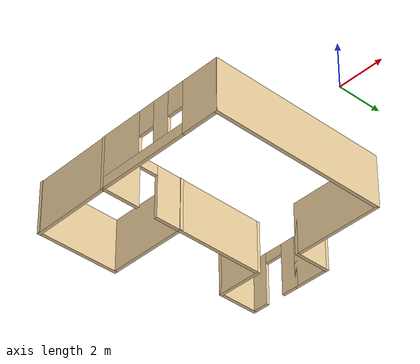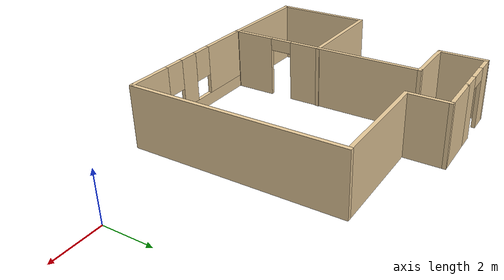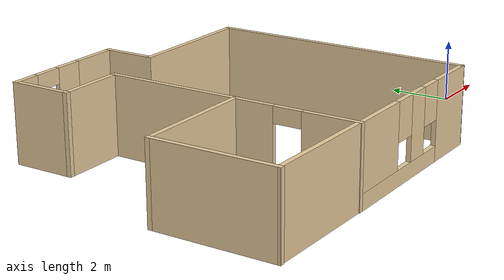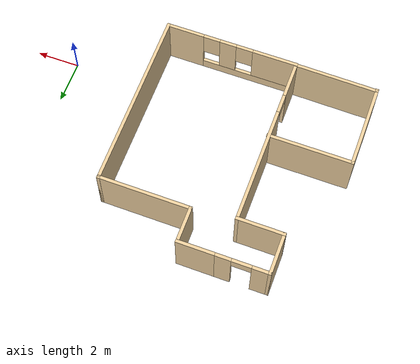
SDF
<?xml version='1.0'?>
<sdf version='1.6'>
  <model name='building2'>
    <pose frame=''>-7.03582 2.78165 0 0 -0 0</pose>
    <link name='Wall_10'>
      <pose frame=''>-3.13529 -0.925 0 0 -0 1.5708</pose>
      <visual name='Wall_10_Visual_0'>
        <pose frame=''>-3.222 0 1.25 0 -0 0</pose>
        <geometry>
          <box>
            <size>1.80599 0.15 2.5</size>
          </box>
        </geometry>
        <material>
          <script>
            <uri>file://media/materials/scripts/gazebo.material</uri>
            <name>Gazebo/Grey</name>
          </script>
          <ambient>0.921569 0.807843 0.615686 1</ambient>
        </material>
        <meta>
          <layer>0</layer>
        </meta>
      </visual>
      <collision name='Wall_10_Collision_0'>
        <geometry>
          <box>
            <size>1.80599 0.15 2.5</size>
          </box>
        </geometry>
        <pose frame=''>-3.222 0 1.25 0 -0 0</pose>
      </collision>
      <visual name='Wall_10_Visual_1'>
        <pose frame=''>1.353 0 1.25 0 -0 0</pose>
        <geometry>
          <box>
            <size>5.54401 0.15 2.5</size>
          </box>
        </geometry>
        <material>
          <script>
            <uri>file://media/materials/scripts/gazebo.material</uri>
            <name>Gazebo/Grey</name>
          </script>
          <ambient>0.921569 0.807843 0.615686 1</ambient>
        </material>
        <meta>
          <layer>0</layer>
        </meta>
      </visual>
      <collision name='Wall_10_Collision_1'>
        <geometry>
          <box>
            <size>5.54401 0.15 2.5</size>
          </box>
        </geometry>
        <pose frame=''>1.353 0 1.25 0 -0 0</pose>
      </collision>
      <visual name='Wall_10_Visual_2'>
        <pose frame=''>-1.86901 0 2.25 0 -0 0</pose>
        <geometry>
          <box>
            <size>0.9 0.15 0.5</size>
          </box>
        </geometry>
        <material>
          <script>
            <uri>file://media/materials/scripts/gazebo.material</uri>
            <name>Gazebo/Grey</name>
          </script>
          <ambient>0.921569 0.807843 0.615686 1</ambient>
        </material>
        <meta>
          <layer>0</layer>
        </meta>
      </visual>
      <collision name='Wall_10_Collision_2'>
        <geometry>
          <box>
            <size>0.9 0.15 0.5</size>
          </box>
        </geometry>
        <pose frame=''>-1.86901 0 2.25 0 -0 0</pose>
      </collision>
    </link>
    <link name='Wall_11'>
      <collision name='Wall_11_Collision'>
        <geometry>
          <box>
            <size>2.25 0.15 2.5</size>
          </box>
        </geometry>
        <pose frame=''>0 0 1.25 0 -0 0</pose>
      </collision>
      <visual name='Wall_11_Visual'>
        <pose frame=''>0 0 1.25 0 -0 0</pose>
        <geometry>
          <box>
            <size>2.25 0.15 2.5</size>
          </box>
        </geometry>
        <material>
          <script>
            <uri>file://media/materials/scripts/gazebo.material</uri>
            <name>Gazebo/Grey</name>
          </script>
          <ambient>0.921569 0.807843 0.615686 1</ambient>
        </material>
        <meta>
          <layer>0</layer>
        </meta>
      </visual>
      <pose frame=''>-4.18529 3.125 0 0 -0 3.14159</pose>
    </link>
    <link name='Wall_12'>
      <collision name='Wall_12_Collision'>
        <geometry>
          <box>
            <size>2 0.15 2.5</size>
          </box>
        </geometry>
        <pose frame=''>0 0 1.25 0 -0 0</pose>
      </collision>
      <visual name='Wall_12_Visual'>
        <pose frame=''>0 0 1.25 0 -0 0</pose>
        <geometry>
          <box>
            <size>2 0.15 2.5</size>
          </box>
        </geometry>
        <material>
          <script>
            <uri>file://media/materials/scripts/gazebo.material</uri>
            <name>Gazebo/Grey</name>
          </script>
          <ambient>0.921569 0.807843 0.615686 1</ambient>
        </material>
        <meta>
          <layer>0</layer>
        </meta>
      </visual>
      <pose frame=''>-5.23528 4.05 0 0 -0 1.5708</pose>
    </link>
    <link name='Wall_13'>
      <pose frame=''>-3.98528 4.975 0 0 -0 0</pose>
      <visual name='Wall_13_Visual_0'>
        <pose frame=''>-0.889332 0 1.25 0 -0 0</pose>
        <geometry>
          <box>
            <size>0.871337 0.15 2.5</size>
          </box>
        </geometry>
        <material>
          <script>
            <uri>file://media/materials/scripts/gazebo.material</uri>
            <name>Gazebo/Grey</name>
          </script>
          <ambient>0.921569 0.807843 0.615686 1</ambient>
        </material>
        <meta>
          <layer>0</layer>
        </meta>
      </visual>
      <collision name='Wall_13_Collision_0'>
        <geometry>
          <box>
            <size>0.871337 0.15 2.5</size>
          </box>
        </geometry>
        <pose frame=''>-0.889332 0 1.25 0 -0 0</pose>
      </collision>
      <visual name='Wall_13_Visual_1'>
        <pose frame=''>0.885668 0 1.25 0 -0 0</pose>
        <geometry>
          <box>
            <size>0.878663 0.15 2.5</size>
          </box>
        </geometry>
        <material>
          <script>
            <uri>file://media/materials/scripts/gazebo.material</uri>
            <name>Gazebo/Grey</name>
          </script>
          <ambient>0.921569 0.807843 0.615686 1</ambient>
        </material>
        <meta>
          <layer>0</layer>
        </meta>
      </visual>
      <collision name='Wall_13_Collision_1'>
        <geometry>
          <box>
            <size>0.878663 0.15 2.5</size>
          </box>
        </geometry>
        <pose frame=''>0.885668 0 1.25 0 -0 0</pose>
      </collision>
      <visual name='Wall_13_Visual_2'>
        <pose frame=''>-0.003663 0 2.25 0 -0 0</pose>
        <geometry>
          <box>
            <size>0.9 0.15 0.5</size>
          </box>
        </geometry>
        <material>
          <script>
            <uri>file://media/materials/scripts/gazebo.material</uri>
            <name>Gazebo/Grey</name>
          </script>
          <ambient>0.921569 0.807843 0.615686 1</ambient>
        </material>
        <meta>
          <layer>0</layer>
        </meta>
      </visual>
      <collision name='Wall_13_Collision_2'>
        <geometry>
          <box>
            <size>0.9 0.15 0.5</size>
          </box>
        </geometry>
        <pose frame=''>-0.003663 0 2.25 0 -0 0</pose>
      </collision>
    </link>
    <link name='Wall_15'>
      <collision name='Wall_15_Collision'>
        <geometry>
          <box>
            <size>4 0.15 2.5</size>
          </box>
        </geometry>
        <pose frame=''>0 0 1.25 0 -0 0</pose>
      </collision>
      <visual name='Wall_15_Visual'>
        <pose frame=''>0 0 1.25 0 -0 0</pose>
        <geometry>
          <box>
            <size>4 0.15 2.5</size>
          </box>
        </geometry>
        <material>
          <script>
            <uri>file://media/materials/scripts/gazebo.material</uri>
            <name>Gazebo/Grey</name>
          </script>
          <ambient>0.921569 0.807843 0.615686 1</ambient>
        </material>
        <meta>
          <layer>0</layer>
        </meta>
      </visual>
      <pose frame=''>-5.03498 -1.08234 0 0 -0 3.14159</pose>
    </link>
    <link name='Wall_16'>
      <collision name='Wall_16_Collision'>
        <geometry>
          <box>
            <size>4 0.15 2.5</size>
          </box>
        </geometry>
        <pose frame=''>0 0 1.25 0 -0 0</pose>
      </collision>
      <visual name='Wall_16_Visual'>
        <pose frame=''>0 0 1.25 0 -0 0</pose>
        <geometry>
          <box>
            <size>4 0.15 2.5</size>
          </box>
        </geometry>
        <material>
          <script>
            <uri>file://media/materials/scripts/gazebo.material</uri>
            <name>Gazebo/Grey</name>
          </script>
          <ambient>0.921569 0.807843 0.615686 1</ambient>
        </material>
        <meta>
          <layer>0</layer>
        </meta>
      </visual>
      <pose frame=''>-6.95998 -3.00734 0 0 -0 -1.5708</pose>
    </link>
    <link name='Wall_17'>
      <collision name='Wall_17_Collision'>
        <geometry>
          <box>
            <size>3.97494 0.15 2.5</size>
          </box>
        </geometry>
        <pose frame=''>0 0 1.25 0 -0 0</pose>
      </collision>
      <visual name='Wall_17_Visual'>
        <pose frame=''>0 0 1.25 0 -0 0</pose>
        <geometry>
          <box>
            <size>3.97494 0.15 2.5</size>
          </box>
        </geometry>
        <material>
          <script>
            <uri>file://media/materials/scripts/gazebo.material</uri>
            <name>Gazebo/Grey</name>
          </script>
          <ambient>0.921569 0.807843 0.615686 1</ambient>
        </material>
        <meta>
          <layer>0</layer>
        </meta>
      </visual>
      <pose frame=''>-5.04763 -4.93054 0 0 -0 -0.011153</pose>
    </link>
    <link name='Wall_5'>
      <collision name='Wall_5_Collision'>
        <geometry>
          <box>
            <size>1.75 0.15 2.5</size>
          </box>
        </geometry>
        <pose frame=''>0 0 1.25 0 -0 0</pose>
      </collision>
      <visual name='Wall_5_Visual'>
        <pose frame=''>0 0 1.25 0 -0 0</pose>
        <geometry>
          <box>
            <size>1.75 0.15 2.5</size>
          </box>
        </geometry>
        <material>
          <script>
            <uri>file://media/materials/scripts/gazebo.material</uri>
            <name>Gazebo/Grey</name>
          </script>
          <ambient>0.921569 0.807843 0.615686 1</ambient>
        </material>
        <meta>
          <layer>0</layer>
        </meta>
      </visual>
      <pose frame=''>-1.93528 4.975 0 0 -0 0</pose>
    </link>
    <link name='Wall_6'>
      <collision name='Wall_6_Collision'>
        <geometry>
          <box>
            <size>1.75 0.15 2.5</size>
          </box>
        </geometry>
        <pose frame=''>0 0 1.25 0 -0 0</pose>
      </collision>
      <visual name='Wall_6_Visual'>
        <pose frame=''>0 0 1.25 0 -0 0</pose>
        <geometry>
          <box>
            <size>1.75 0.15 2.5</size>
          </box>
        </geometry>
        <material>
          <script>
            <uri>file://media/materials/scripts/gazebo.material</uri>
            <name>Gazebo/Grey</name>
          </script>
          <ambient>0.921569 0.807843 0.615686 1</ambient>
        </material>
        <meta>
          <layer>0</layer>
        </meta>
      </visual>
      <pose frame=''>-1.13529 4.175 0 0 -0 -1.5708</pose>
    </link>
    <link name='Wall_7'>
      <collision name='Wall_7_Collision'>
        <geometry>
          <box>
            <size>4.35583 0.15 2.5</size>
          </box>
        </geometry>
        <pose frame=''>0 0 1.25 0 -0 0</pose>
      </collision>
      <visual name='Wall_7_Visual'>
        <pose frame=''>0 0 1.25 0 -0 0</pose>
        <geometry>
          <box>
            <size>4.35583 0.15 2.5</size>
          </box>
        </geometry>
        <material>
          <script>
            <uri>file://media/materials/scripts/gazebo.material</uri>
            <name>Gazebo/Grey</name>
          </script>
          <ambient>0.921569 0.807843 0.615686 1</ambient>
        </material>
        <meta>
          <layer>0</layer>
        </meta>
      </visual>
      <pose frame=''>0.967632 3.375 0 0 -0 0</pose>
    </link>
    <link name='Wall_8'>
      <collision name='Wall_8_Collision'>
        <geometry>
          <box>
            <size>8.5 0.15 2.5</size>
          </box>
        </geometry>
        <pose frame=''>0 0 1.25 0 -0 0</pose>
      </collision>
      <visual name='Wall_8_Visual'>
        <pose frame=''>0 0 1.25 0 -0 0</pose>
        <geometry>
          <box>
            <size>8.5 0.15 2.5</size>
          </box>
        </geometry>
        <material>
          <script>
            <uri>file://media/materials/scripts/gazebo.material</uri>
            <name>Gazebo/Grey</name>
          </script>
          <ambient>0.921569 0.807843 0.615686 1</ambient>
        </material>
        <meta>
          <layer>0</layer>
        </meta>
      </visual>
      <pose frame=''>3.09368 -0.8 0 0 -0 -1.5708</pose>
    </link>
    <link name='Wall_9'>
      <pose frame=''>-0.032368 -4.975 0 0 -0 3.14159</pose>
      <visual name='Wall_9_Visual_0'>
        <pose frame=''>-2.27409 0 1.25 0 -0 0</pose>
        <geometry>
          <box>
            <size>1.8077 0.15 2.5</size>
          </box>
        </geometry>
        <material>
          <script>
            <uri>file://media/materials/scripts/gazebo.material</uri>
            <name>Gazebo/Grey</name>
          </script>
          <ambient>0.921569 0.807843 0.615686 1</ambient>
        </material>
        <meta>
          <layer>0</layer>
        </meta>
      </visual>
      <collision name='Wall_9_Collision_0'>
        <geometry>
          <box>
            <size>1.8077 0.15 2.5</size>
          </box>
        </geometry>
        <pose frame=''>-2.27409 0 1.25 0 -0 0</pose>
      </collision>
      <visual name='Wall_9_Visual_1'>
        <pose frame=''>0.903849 0 0.25 0 -0 0</pose>
        <geometry>
          <box>
            <size>4.54818 0.15 0.5</size>
          </box>
        </geometry>
        <material>
          <script>
            <uri>file://media/materials/scripts/gazebo.material</uri>
            <name>Gazebo/Grey</name>
          </script>
          <ambient>0.921569 0.807843 0.615686 1</ambient>
        </material>
        <meta>
          <layer>0</layer>
        </meta>
      </visual>
      <collision name='Wall_9_Collision_1'>
        <geometry>
          <box>
            <size>4.54818 0.15 0.5</size>
          </box>
        </geometry>
        <pose frame=''>0.903849 0 0.25 0 -0 0</pose>
      </collision>
      <visual name='Wall_9_Visual_2'>
        <pose frame=''>-0.172234 0 1.5 0 -0 0</pose>
        <geometry>
          <box>
            <size>0.796012 0.15 2</size>
          </box>
        </geometry>
        <material>
          <script>
            <uri>file://media/materials/scripts/gazebo.material</uri>
            <name>Gazebo/Grey</name>
          </script>
          <ambient>0.921569 0.807843 0.615686 1</ambient>
        </material>
        <meta>
          <layer>0</layer>
        </meta>
      </visual>
      <collision name='Wall_9_Collision_2'>
        <geometry>
          <box>
            <size>0.796012 0.15 2</size>
          </box>
        </geometry>
        <pose frame=''>-0.172234 0 1.5 0 -0 0</pose>
      </collision>
      <visual name='Wall_9_Visual_3'>
        <pose frame=''>2.10186 0 1.5 0 -0 0</pose>
        <geometry>
          <box>
            <size>2.15217 0.15 2</size>
          </box>
        </geometry>
        <material>
          <script>
            <uri>file://media/materials/scripts/gazebo.material</uri>
            <name>Gazebo/Grey</name>
          </script>
          <ambient>0.921569 0.807843 0.615686 1</ambient>
        </material>
        <meta>
          <layer>0</layer>
        </meta>
      </visual>
      <collision name='Wall_9_Collision_3'>
        <geometry>
          <box>
            <size>2.15217 0.15 2</size>
          </box>
        </geometry>
        <pose frame=''>2.10186 0 1.5 0 -0 0</pose>
      </collision>
      <visual name='Wall_9_Visual_4'>
        <pose frame=''>-0.97024 0 1.9 0 -0 0</pose>
        <geometry>
          <box>
            <size>0.8 0.15 1.2</size>
          </box>
        </geometry>
        <material>
          <script>
            <uri>file://media/materials/scripts/gazebo.material</uri>
            <name>Gazebo/Grey</name>
          </script>
          <ambient>0.921569 0.807843 0.615686 1</ambient>
        </material>
        <meta>
          <layer>0</layer>
        </meta>
      </visual>
      <collision name='Wall_9_Collision_4'>
        <geometry>
          <box>
            <size>0.8 0.15 1.2</size>
          </box>
        </geometry>
        <pose frame=''>-0.97024 0 1.9 0 -0 0</pose>
      </collision>
      <visual name='Wall_9_Visual_5'>
        <pose frame=''>0.625772 0 1.9 0 -0 0</pose>
        <geometry>
          <box>
            <size>0.8 0.15 1.2</size>
          </box>
        </geometry>
        <material>
          <script>
            <uri>file://media/materials/scripts/gazebo.material</uri>
            <name>Gazebo/Grey</name>
          </script>
          <ambient>0.921569 0.807843 0.615686 1</ambient>
        </material>
        <meta>
          <layer>0</layer>
        </meta>
      </visual>
      <collision name='Wall_9_Collision_5'>
        <geometry>
          <box>
            <size>0.8 0.15 1.2</size>
          </box>
        </geometry>
        <pose frame=''>0.625772 0 1.9 0 -0 0</pose>
      </collision>
    </link>
    <static>1</static>
  </model>
</sdf>
